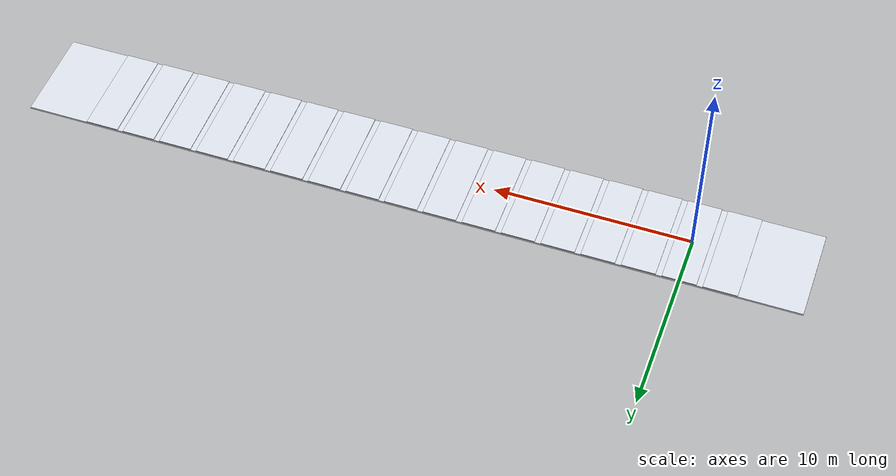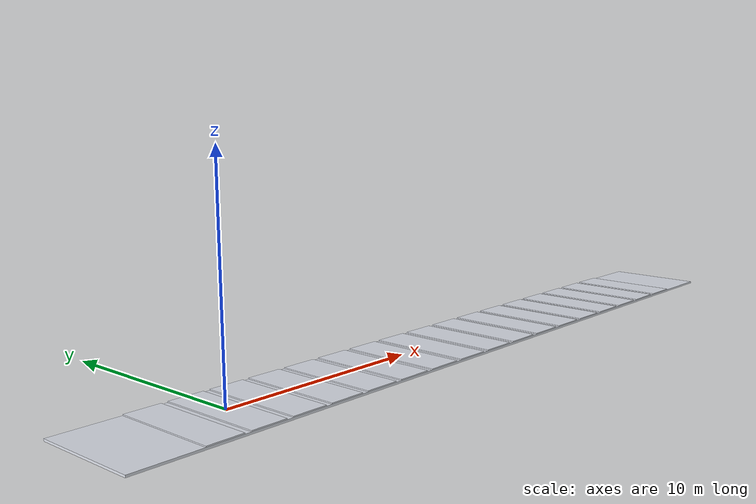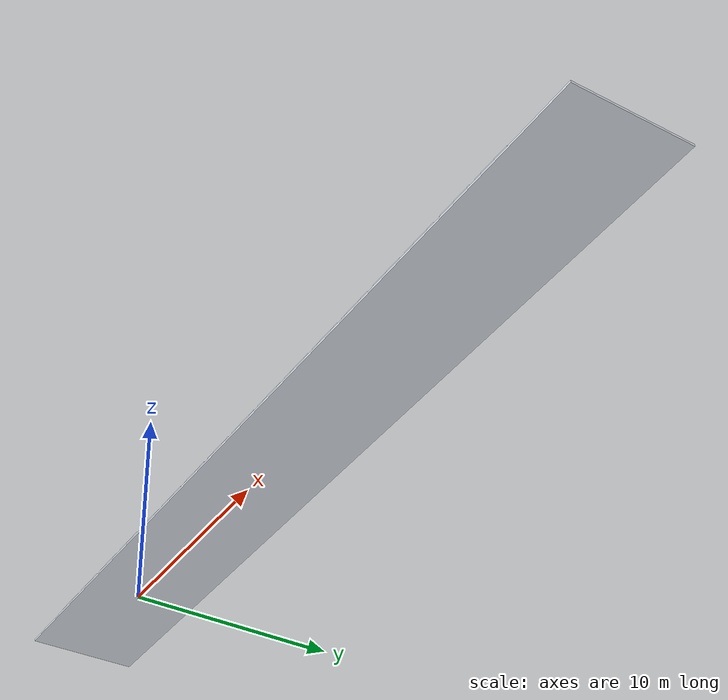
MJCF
<mujoco model="scene">
    <statistic center="0 0 0.1" extent="0.8"/>
    <visual>
        <headlight diffuse="0.4 0.4 0.4" ambient="0.25 0.25 0.25" specular="0.25 0.25 0.25"/>
        <rgba haze="0.99 0.99 0.99 1"/>
        <global azimuth="-130" elevation="-20"/>
    </visual>
    <asset>
        <texture type="skybox" builtin="gradient" rgb1="0.99 0.99 0.99" rgb2="0.99 0.99 0.99" width="512" height="3072"/>
        <texture type="2d" name="groundplane" builtin="checker" mark="edge"
                 rgb1="0.93 0.93 0.93" rgb2="0.82 0.86 0.93" markrgb="0 0 0" width="250" height="250"/>
        <material name="groundplane" texture="groundplane" texuniform="true" texrepeat="4 4" reflectance="0.05"/>
    </asset>
    <worldbody>
        <light pos="0 0 5.0" dir="0 0 -1" directional="true" castshadow="true"/>
        <!-- Continuous trench floor at z = -0.05 (the "hole" bottom). -->
        <geom name="trench_floor" type="box" size="20 2.5 0.05" pos="14 0 -0.1000"
              material="groundplane" friction="1.0 0.005 0.0"/>
        <geom name="gap_strip_0" type="box" size="0.85 2.5 0.0250" pos="-2 0 -0.0250" material="groundplane" friction="1.0 0.005 0.0"/>
        <geom name="floor" type="box" size="0.85 2.5 0.0250" pos="0 0 -0.0250" material="groundplane" friction="1.0 0.005 0.0"/>
        <geom name="gap_strip_2" type="box" size="0.85 2.5 0.0250" pos="2 0 -0.0250" material="groundplane" friction="1.0 0.005 0.0"/>
        <geom name="gap_strip_3" type="box" size="0.85 2.5 0.0250" pos="4 0 -0.0250" material="groundplane" friction="1.0 0.005 0.0"/>
        <geom name="gap_strip_4" type="box" size="0.85 2.5 0.0250" pos="6 0 -0.0250" material="groundplane" friction="1.0 0.005 0.0"/>
        <geom name="gap_strip_5" type="box" size="0.85 2.5 0.0250" pos="8 0 -0.0250" material="groundplane" friction="1.0 0.005 0.0"/>
        <geom name="gap_strip_6" type="box" size="0.85 2.5 0.0250" pos="10 0 -0.0250" material="groundplane" friction="1.0 0.005 0.0"/>
        <geom name="gap_strip_7" type="box" size="0.85 2.5 0.0250" pos="12 0 -0.0250" material="groundplane" friction="1.0 0.005 0.0"/>
        <geom name="gap_strip_8" type="box" size="0.85 2.5 0.0250" pos="14 0 -0.0250" material="groundplane" friction="1.0 0.005 0.0"/>
        <geom name="gap_strip_9" type="box" size="0.85 2.5 0.0250" pos="16 0 -0.0250" material="groundplane" friction="1.0 0.005 0.0"/>
        <geom name="gap_strip_10" type="box" size="0.85 2.5 0.0250" pos="18 0 -0.0250" material="groundplane" friction="1.0 0.005 0.0"/>
        <geom name="gap_strip_11" type="box" size="0.85 2.5 0.0250" pos="20 0 -0.0250" material="groundplane" friction="1.0 0.005 0.0"/>
        <geom name="gap_strip_12" type="box" size="0.85 2.5 0.0250" pos="22 0 -0.0250" material="groundplane" friction="1.0 0.005 0.0"/>
        <geom name="gap_strip_13" type="box" size="0.85 2.5 0.0250" pos="24 0 -0.0250" material="groundplane" friction="1.0 0.005 0.0"/>
        <geom name="gap_strip_14" type="box" size="0.85 2.5 0.0250" pos="26 0 -0.0250" material="groundplane" friction="1.0 0.005 0.0"/>
        <geom name="gap_strip_15" type="box" size="0.85 2.5 0.0250" pos="28 0 -0.0250" material="groundplane" friction="1.0 0.005 0.0"/>
        <geom name="gap_strip_16" type="box" size="0.85 2.5 0.0250" pos="30 0 -0.0250" material="groundplane" friction="1.0 0.005 0.0"/>
    </worldbody>
</mujoco>
